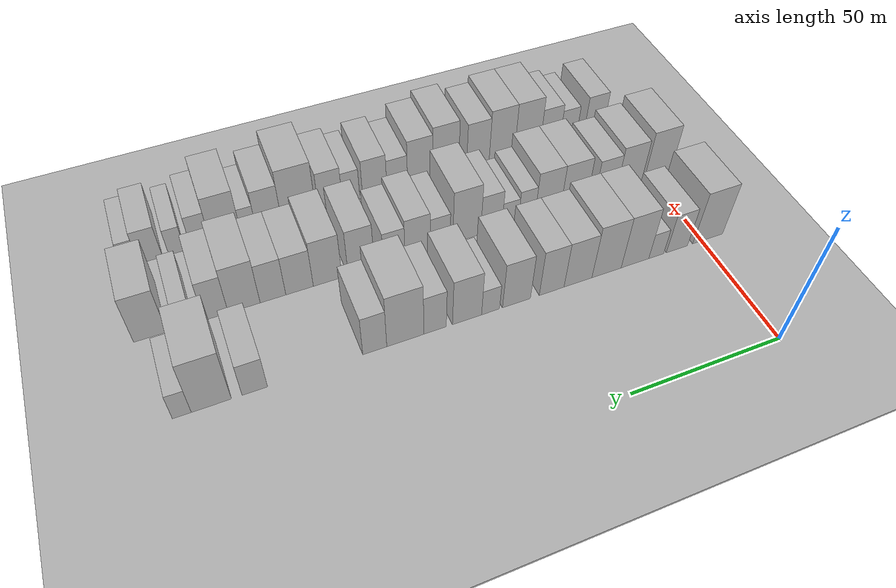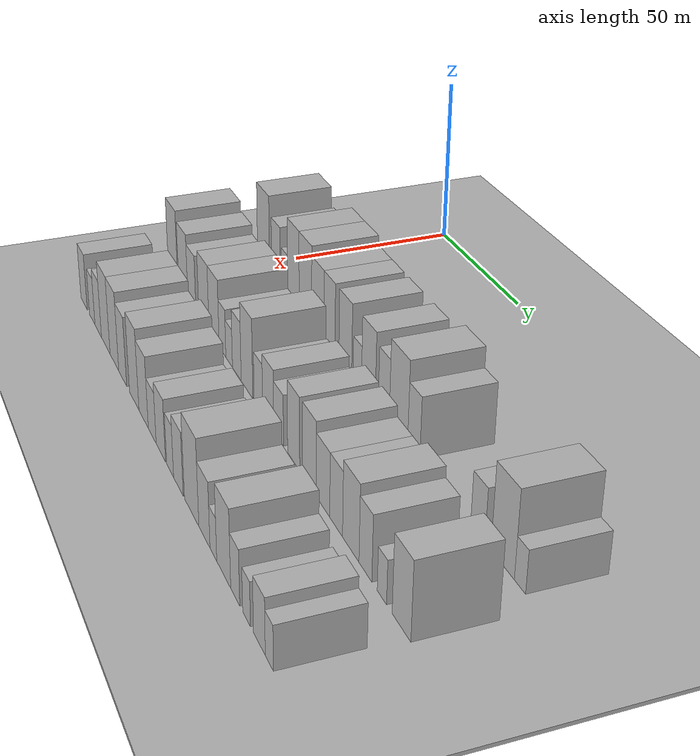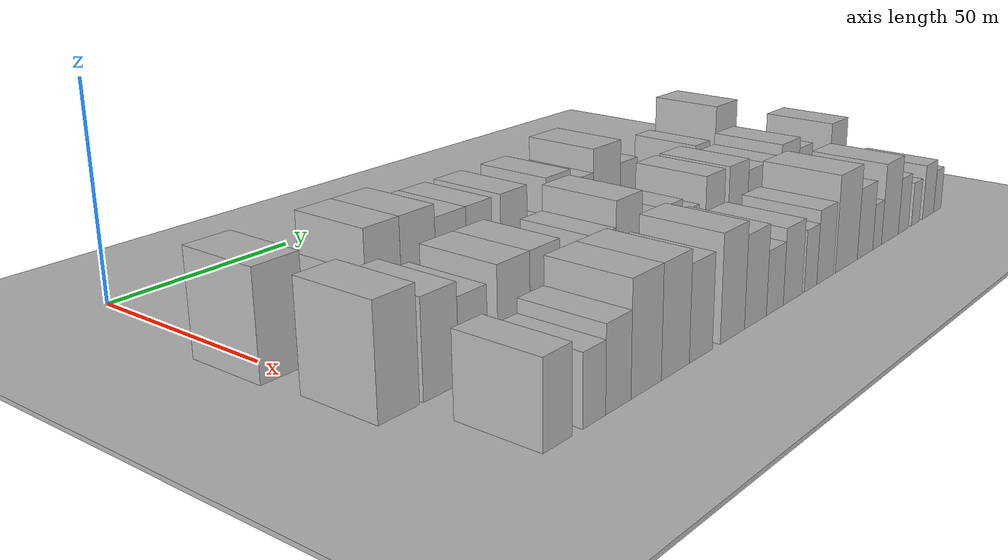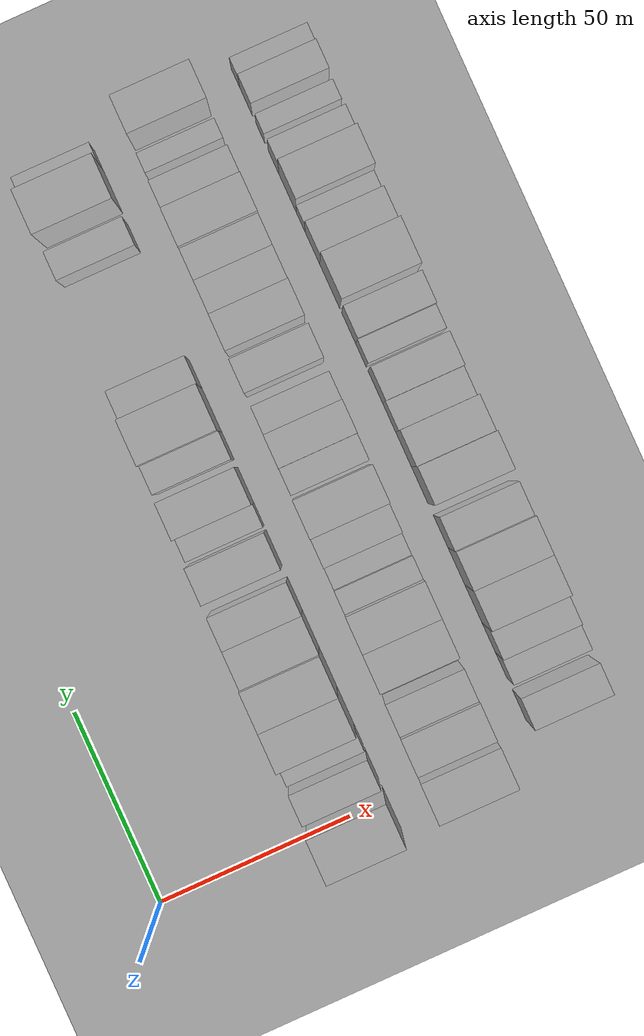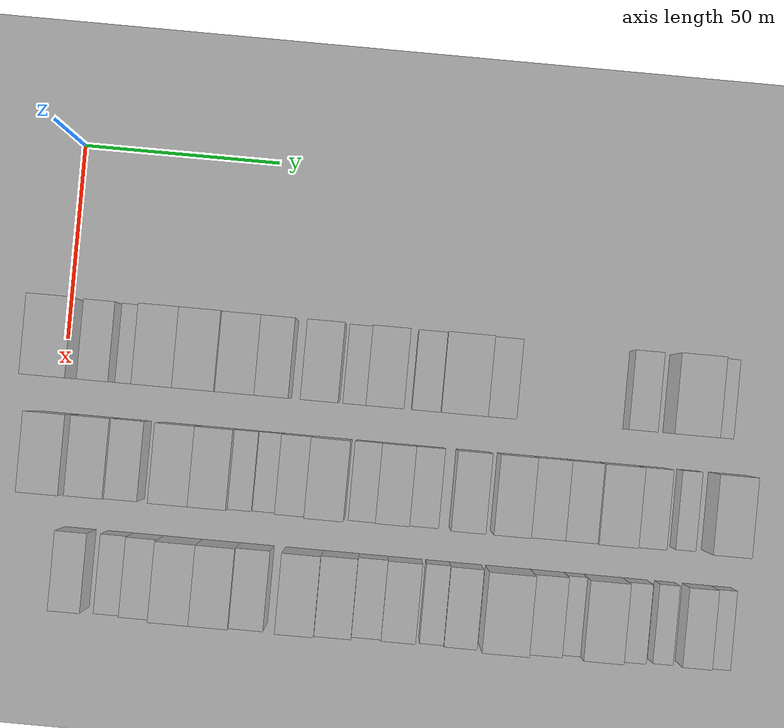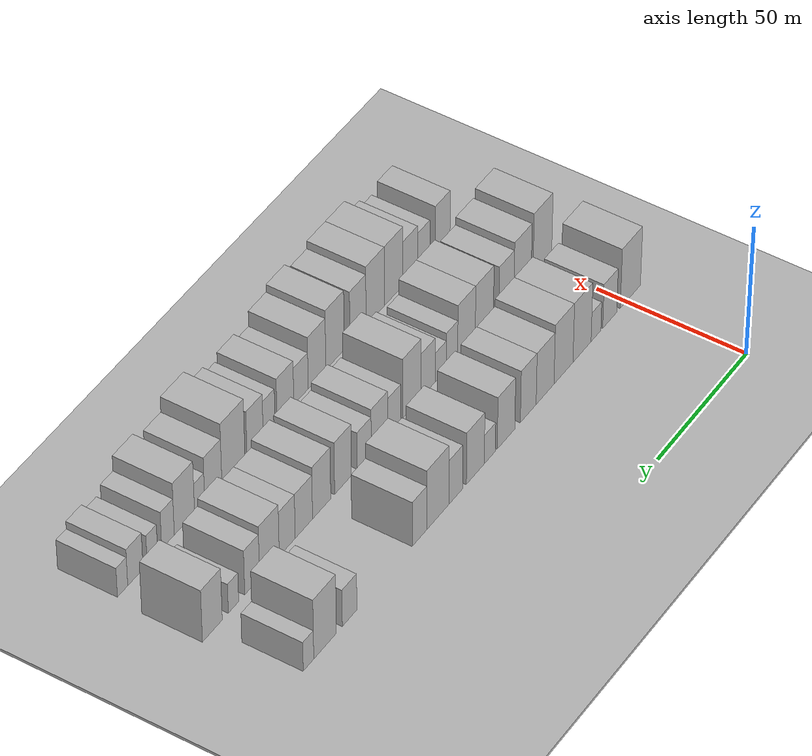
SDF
<sdf version="1.6">
 <world name="default">
  <include><name>ground_plane_1</name><uri>model://HANNAS_ground_plane</uri></include>
  <include>
   <name>ground_plane_2</name>
   <uri>model://HANNAS_ground_plane</uri>
   <pose>100 0 0  0 0 0</pose>
  </include>
  <model name="building_40">
   <static>1</static>
   <pose>50.0000 -1.9249 0 0.000000 0.000000 0.000000</pose>
   <link name="link">
    <pose>0 0 12.00 0 0 0</pose>
    <collision name="collision"><geometry><box><size>20.0000 11.3123 24.0000</size></box></geometry></collision>
    <visual name="visual">
     <cast_shadows>0</cast_shadows>
     <geometry><box><size>20.0000 11.3123 24.0000</size></box></geometry>
     <material>
      <script>
       <uri>model://HANNAS_wall/materials/scripts</uri>
       <uri>model://HANNAS_wall/materials/textures</uri>
       <name>vrc/HANNAS_wall</name>
      </script>
     </material>
    </visual>
   </link>
  </model>
  <model name="building_41">
   <static>1</static>
   <pose>50.0000 9.6621 0 0.000000 0.000000 0.000000</pose>
   <link name="link">
    <pose>0 0 9.00 0 0 0</pose>
    <collision name="collision"><geometry><box><size>20.0000 7.8618 18.0000</size></box></geometry></collision>
    <visual name="visual">
     <cast_shadows>0</cast_shadows>
     <geometry><box><size>20.0000 7.8618 18.0000</size></box></geometry>
     <material>
      <script>
       <uri>model://HANNAS_wall/materials/scripts</uri>
       <uri>model://HANNAS_wall/materials/textures</uri>
       <name>vrc/HANNAS_wall</name>
      </script>
     </material>
    </visual>
   </link>
  </model>
  <model name="building_42">
   <static>1</static>
   <pose>50.0000 17.3283 0 0.000000 0.000000 0.000000</pose>
   <link name="link">
    <pose>0 0 6.00 0 0 0</pose>
    <collision name="collision"><geometry><box><size>20.0000 5.4705 12.0000</size></box></geometry></collision>
    <visual name="visual">
     <cast_shadows>0</cast_shadows>
     <geometry><box><size>20.0000 5.4705 12.0000</size></box></geometry>
     <material>
      <script>
       <uri>model://HANNAS_wall/materials/scripts</uri>
       <uri>model://HANNAS_wall/materials/textures</uri>
       <name>vrc/HANNAS_wall</name>
      </script>
     </material>
    </visual>
   </link>
  </model>
  <model name="building_43">
   <static>1</static>
   <pose>50.0000 25.0624 0 0.000000 0.000000 0.000000</pose>
   <link name="link">
    <pose>0 0 12.00 0 0 0</pose>
    <collision name="collision"><geometry><box><size>20.0000 9.9977 24.0000</size></box></geometry></collision>
    <visual name="visual">
     <cast_shadows>0</cast_shadows>
     <geometry><box><size>20.0000 9.9977 24.0000</size></box></geometry>
     <material>
      <script>
       <uri>model://HANNAS_wall/materials/scripts</uri>
       <uri>model://HANNAS_wall/materials/textures</uri>
       <name>vrc/HANNAS_wall</name>
      </script>
     </material>
    </visual>
   </link>
  </model>
  <model name="building_44">
   <static>1</static>
   <pose>50.0000 35.2665 0 0.000000 0.000000 0.000000</pose>
   <link name="link">
    <pose>0 0 12.00 0 0 0</pose>
    <collision name="collision"><geometry><box><size>20.0000 10.4106 24.0000</size></box></geometry></collision>
    <visual name="visual">
     <cast_shadows>0</cast_shadows>
     <geometry><box><size>20.0000 10.4106 24.0000</size></box></geometry>
     <material>
      <script>
       <uri>model://HANNAS_wall/materials/scripts</uri>
       <uri>model://HANNAS_wall/materials/textures</uri>
       <name>vrc/HANNAS_wall</name>
      </script>
     </material>
    </visual>
   </link>
  </model>
  <model name="building_45">
   <static>1</static>
   <pose>50.0000 45.3380 0 0.000000 0.000000 0.000000</pose>
   <link name="link">
    <pose>0 0 10.50 0 0 0</pose>
    <collision name="collision"><geometry><box><size>20.0000 9.7325 21.0000</size></box></geometry></collision>
    <visual name="visual">
     <cast_shadows>0</cast_shadows>
     <geometry><box><size>20.0000 9.7325 21.0000</size></box></geometry>
     <material>
      <script>
       <uri>model://HANNAS_wall/materials/scripts</uri>
       <uri>model://HANNAS_wall/materials/textures</uri>
       <name>vrc/HANNAS_wall</name>
      </script>
     </material>
    </visual>
   </link>
  </model>
  <model name="building_46">
   <static>1</static>
   <pose>50.0000 54.4588 0 0.000000 0.000000 0.000000</pose>
   <link name="link">
    <pose>0 0 10.50 0 0 0</pose>
    <collision name="collision"><geometry><box><size>20.0000 8.5090 21.0000</size></box></geometry></collision>
    <visual name="visual">
     <cast_shadows>0</cast_shadows>
     <geometry><box><size>20.0000 8.5090 21.0000</size></box></geometry>
     <material>
      <script>
       <uri>model://HANNAS_wall/materials/scripts</uri>
       <uri>model://HANNAS_wall/materials/textures</uri>
       <name>vrc/HANNAS_wall</name>
      </script>
     </material>
    </visual>
   </link>
  </model>
  <model name="building_47">
   <static>1</static>
   <pose>50.0000 66.4038 0 0.000000 0.000000 0.000000</pose>
   <link name="link">
    <pose>0 0 10.50 0 0 0</pose>
    <collision name="collision"><geometry><box><size>20.0000 9.3811 21.0000</size></box></geometry></collision>
    <visual name="visual">
     <cast_shadows>0</cast_shadows>
     <geometry><box><size>20.0000 9.3811 21.0000</size></box></geometry>
     <material>
      <script>
       <uri>model://HANNAS_wall/materials/scripts</uri>
       <uri>model://HANNAS_wall/materials/textures</uri>
       <name>vrc/HANNAS_wall</name>
      </script>
     </material>
    </visual>
   </link>
  </model>
  <model name="building_48">
   <static>1</static>
   <pose>50.0000 75.0633 0 0.000000 0.000000 0.000000</pose>
   <link name="link">
    <pose>0 0 6.00 0 0 0</pose>
    <collision name="collision"><geometry><box><size>20.0000 5.9378 12.0000</size></box></geometry></collision>
    <visual name="visual">
     <cast_shadows>0</cast_shadows>
     <geometry><box><size>20.0000 5.9378 12.0000</size></box></geometry>
     <material>
      <script>
       <uri>model://HANNAS_wall/materials/scripts</uri>
       <uri>model://HANNAS_wall/materials/textures</uri>
       <name>vrc/HANNAS_wall</name>
      </script>
     </material>
    </visual>
   </link>
  </model>
  <model name="building_49">
   <static>1</static>
   <pose>50.0000 82.7642 0 0.000000 0.000000 0.000000</pose>
   <link name="link">
    <pose>0 0 10.50 0 0 0</pose>
    <collision name="collision"><geometry><box><size>20.0000 9.4639 21.0000</size></box></geometry></collision>
    <visual name="visual">
     <cast_shadows>0</cast_shadows>
     <geometry><box><size>20.0000 9.4639 21.0000</size></box></geometry>
     <material>
      <script>
       <uri>model://HANNAS_wall/materials/scripts</uri>
       <uri>model://HANNAS_wall/materials/textures</uri>
       <name>vrc/HANNAS_wall</name>
      </script>
     </material>
    </visual>
   </link>
  </model>
  <model name="building_50">
   <static>1</static>
   <pose>50.0000 93.1037 0 0.000000 0.000000 0.000000</pose>
   <link name="link">
    <pose>0 0 9.00 0 0 0</pose>
    <collision name="collision"><geometry><box><size>20.0000 7.2151 18.0000</size></box></geometry></collision>
    <visual name="visual">
     <cast_shadows>0</cast_shadows>
     <geometry><box><size>20.0000 7.2151 18.0000</size></box></geometry>
     <material>
      <script>
       <uri>model://HANNAS_wall/materials/scripts</uri>
       <uri>model://HANNAS_wall/materials/textures</uri>
       <name>vrc/HANNAS_wall</name>
      </script>
     </material>
    </visual>
   </link>
  </model>
  <model name="building_51">
   <static>1</static>
   <pose>50.0000 102.4961 0 0.000000 0.000000 0.000000</pose>
   <link name="link">
    <pose>0 0 12.00 0 0 0</pose>
    <collision name="collision"><geometry><box><size>20.0000 11.5699 24.0000</size></box></geometry></collision>
    <visual name="visual">
     <cast_shadows>0</cast_shadows>
     <geometry><box><size>20.0000 11.5699 24.0000</size></box></geometry>
     <material>
      <script>
       <uri>model://HANNAS_wall/materials/scripts</uri>
       <uri>model://HANNAS_wall/materials/textures</uri>
       <name>vrc/HANNAS_wall</name>
      </script>
     </material>
    </visual>
   </link>
  </model>
  <model name="building_52">
   <static>1</static>
   <pose>50.0000 111.9788 0 0.000000 0.000000 0.000000</pose>
   <link name="link">
    <pose>0 0 9.00 0 0 0</pose>
    <collision name="collision"><geometry><box><size>20.0000 7.3954 18.0000</size></box></geometry></collision>
    <visual name="visual">
     <cast_shadows>0</cast_shadows>
     <geometry><box><size>20.0000 7.3954 18.0000</size></box></geometry>
     <material>
      <script>
       <uri>model://HANNAS_wall/materials/scripts</uri>
       <uri>model://HANNAS_wall/materials/textures</uri>
       <name>vrc/HANNAS_wall</name>
      </script>
     </material>
    </visual>
   </link>
  </model>
  <model name="building_53">
   <static>1</static>
   <pose>50.0000 147.6479 0 0.000000 0.000000 0.000000</pose>
   <link name="link">
    <pose>0 0 7.50 0 0 0</pose>
    <collision name="collision"><geometry><box><size>20.0000 7.3143 15.0000</size></box></geometry></collision>
    <visual name="visual">
     <cast_shadows>0</cast_shadows>
     <geometry><box><size>20.0000 7.3143 15.0000</size></box></geometry>
     <material>
      <script>
       <uri>model://HANNAS_wall/materials/scripts</uri>
       <uri>model://HANNAS_wall/materials/textures</uri>
       <name>vrc/HANNAS_wall</name>
      </script>
     </material>
    </visual>
   </link>
  </model>
  <model name="building_54">
   <static>1</static>
   <pose>50.0000 159.9370 0 0.000000 0.000000 0.000000</pose>
   <link name="link">
    <pose>0 0 12.00 0 0 0</pose>
    <collision name="collision"><geometry><box><size>20.0000 11.2640 24.0000</size></box></geometry></collision>
    <visual name="visual">
     <cast_shadows>0</cast_shadows>
     <geometry><box><size>20.0000 11.2640 24.0000</size></box></geometry>
     <material>
      <script>
       <uri>model://HANNAS_wall/materials/scripts</uri>
       <uri>model://HANNAS_wall/materials/textures</uri>
       <name>vrc/HANNAS_wall</name>
      </script>
     </material>
    </visual>
   </link>
  </model>
  <model name="building_55">
   <static>1</static>
   <pose>50.0000 168.1762 0 0.000000 0.000000 0.000000</pose>
   <link name="link">
    <pose>0 0 6.00 0 0 0</pose>
    <collision name="collision"><geometry><box><size>20.0000 5.2142 12.0000</size></box></geometry></collision>
    <visual name="visual">
     <cast_shadows>0</cast_shadows>
     <geometry><box><size>20.0000 5.2142 12.0000</size></box></geometry>
     <material>
      <script>
       <uri>model://HANNAS_wall/materials/scripts</uri>
       <uri>model://HANNAS_wall/materials/textures</uri>
       <name>vrc/HANNAS_wall</name>
      </script>
     </material>
    </visual>
   </link>
  </model>
  <model name="building_111">
   <static>1</static>
   <pose>79.0000 -0.5664 0 0.000000 0.000000 0.000000</pose>
   <link name="link">
    <pose>0 0 12.00 0 0 0</pose>
    <collision name="collision"><geometry><box><size>20.0000 10.4074 24.0000</size></box></geometry></collision>
    <visual name="visual">
     <cast_shadows>0</cast_shadows>
     <geometry><box><size>20.0000 10.4074 24.0000</size></box></geometry>
     <material>
      <script>
       <uri>model://HANNAS_wall/materials/scripts</uri>
       <uri>model://HANNAS_wall/materials/textures</uri>
       <name>vrc/HANNAS_wall</name>
      </script>
     </material>
    </visual>
   </link>
  </model>
  <model name="building_112">
   <static>1</static>
   <pose>79.0000 10.4202 0 0.000000 0.000000 0.000000</pose>
   <link name="link">
    <pose>0 0 10.50 0 0 0</pose>
    <collision name="collision"><geometry><box><size>20.0000 9.5658 21.0000</size></box></geometry></collision>
    <visual name="visual">
     <cast_shadows>0</cast_shadows>
     <geometry><box><size>20.0000 9.5658 21.0000</size></box></geometry>
     <material>
      <script>
       <uri>model://HANNAS_wall/materials/scripts</uri>
       <uri>model://HANNAS_wall/materials/textures</uri>
       <name>vrc/HANNAS_wall</name>
      </script>
     </material>
    </visual>
   </link>
  </model>
  <model name="building_113">
   <static>1</static>
   <pose>79.0000 19.3299 0 0.000000 0.000000 0.000000</pose>
   <link name="link">
    <pose>0 0 9.00 0 0 0</pose>
    <collision name="collision"><geometry><box><size>20.0000 8.2535 18.0000</size></box></geometry></collision>
    <visual name="visual">
     <cast_shadows>0</cast_shadows>
     <geometry><box><size>20.0000 8.2535 18.0000</size></box></geometry>
     <material>
      <script>
       <uri>model://HANNAS_wall/materials/scripts</uri>
       <uri>model://HANNAS_wall/materials/textures</uri>
       <name>vrc/HANNAS_wall</name>
      </script>
     </material>
    </visual>
   </link>
  </model>
  <model name="building_114">
   <static>1</static>
   <pose>79.0000 31.3929 0 0.000000 0.000000 0.000000</pose>
   <link name="link">
    <pose>0 0 10.50 0 0 0</pose>
    <collision name="collision"><geometry><box><size>20.0000 9.8724 21.0000</size></box></geometry></collision>
    <visual name="visual">
     <cast_shadows>0</cast_shadows>
     <geometry><box><size>20.0000 9.8724 21.0000</size></box></geometry>
     <material>
      <script>
       <uri>model://HANNAS_wall/materials/scripts</uri>
       <uri>model://HANNAS_wall/materials/textures</uri>
       <name>vrc/HANNAS_wall</name>
      </script>
     </material>
    </visual>
   </link>
  </model>
  <model name="building_115">
   <static>1</static>
   <pose>79.0000 41.0868 0 0.000000 0.000000 0.000000</pose>
   <link name="link">
    <pose>0 0 10.50 0 0 0</pose>
    <collision name="collision"><geometry><box><size>20.0000 9.5153 21.0000</size></box></geometry></collision>
    <visual name="visual">
     <cast_shadows>0</cast_shadows>
     <geometry><box><size>20.0000 9.5153 21.0000</size></box></geometry>
     <material>
      <script>
       <uri>model://HANNAS_wall/materials/scripts</uri>
       <uri>model://HANNAS_wall/materials/textures</uri>
       <name>vrc/HANNAS_wall</name>
      </script>
     </material>
    </visual>
   </link>
  </model>
  <model name="building_116">
   <static>1</static>
   <pose>79.0000 48.8703 0 0.000000 0.000000 0.000000</pose>
   <link name="link">
    <pose>0 0 7.50 0 0 0</pose>
    <collision name="collision"><geometry><box><size>20.0000 6.0516 15.0000</size></box></geometry></collision>
    <visual name="visual">
     <cast_shadows>0</cast_shadows>
     <geometry><box><size>20.0000 6.0516 15.0000</size></box></geometry>
     <material>
      <script>
       <uri>model://HANNAS_wall/materials/scripts</uri>
       <uri>model://HANNAS_wall/materials/textures</uri>
       <name>vrc/HANNAS_wall</name>
      </script>
     </material>
    </visual>
   </link>
  </model>
  <model name="building_117">
   <static>1</static>
   <pose>79.0000 54.8504 0 0.000000 0.000000 0.000000</pose>
   <link name="link">
    <pose>0 0 6.00 0 0 0</pose>
    <collision name="collision"><geometry><box><size>20.0000 5.9087 12.0000</size></box></geometry></collision>
    <visual name="visual">
     <cast_shadows>0</cast_shadows>
     <geometry><box><size>20.0000 5.9087 12.0000</size></box></geometry>
     <material>
      <script>
       <uri>model://HANNAS_wall/materials/scripts</uri>
       <uri>model://HANNAS_wall/materials/textures</uri>
       <name>vrc/HANNAS_wall</name>
      </script>
     </material>
    </visual>
   </link>
  </model>
  <model name="building_118">
   <static>1</static>
   <pose>79.0000 61.5943 0 0.000000 0.000000 0.000000</pose>
   <link name="link">
    <pose>0 0 9.00 0 0 0</pose>
    <collision name="collision"><geometry><box><size>20.0000 7.5792 18.0000</size></box></geometry></collision>
    <visual name="visual">
     <cast_shadows>0</cast_shadows>
     <geometry><box><size>20.0000 7.5792 18.0000</size></box></geometry>
     <material>
      <script>
       <uri>model://HANNAS_wall/materials/scripts</uri>
       <uri>model://HANNAS_wall/materials/textures</uri>
       <name>vrc/HANNAS_wall</name>
      </script>
     </material>
    </visual>
   </link>
  </model>
  <model name="building_119">
   <static>1</static>
   <pose>79.0000 70.2655 0 0.000000 0.000000 0.000000</pose>
   <link name="link">
    <pose>0 0 12.00 0 0 0</pose>
    <collision name="collision"><geometry><box><size>20.0000 9.7632 24.0000</size></box></geometry></collision>
    <visual name="visual">
     <cast_shadows>0</cast_shadows>
     <geometry><box><size>20.0000 9.7632 24.0000</size></box></geometry>
     <material>
      <script>
       <uri>model://HANNAS_wall/materials/scripts</uri>
       <uri>model://HANNAS_wall/materials/textures</uri>
       <name>vrc/HANNAS_wall</name>
      </script>
     </material>
    </visual>
   </link>
  </model>
  <model name="building_120">
   <static>1</static>
   <pose>79.0000 79.5717 0 0.000000 0.000000 0.000000</pose>
   <link name="link">
    <pose>0 0 7.50 0 0 0</pose>
    <collision name="collision"><geometry><box><size>20.0000 6.8492 15.0000</size></box></geometry></collision>
    <visual name="visual">
     <cast_shadows>0</cast_shadows>
     <geometry><box><size>20.0000 6.8492 15.0000</size></box></geometry>
     <material>
      <script>
       <uri>model://HANNAS_wall/materials/scripts</uri>
       <uri>model://HANNAS_wall/materials/textures</uri>
       <name>vrc/HANNAS_wall</name>
      </script>
     </material>
    </visual>
   </link>
  </model>
  <model name="building_121">
   <static>1</static>
   <pose>79.0000 87.2828 0 0.000000 0.000000 0.000000</pose>
   <link name="link">
    <pose>0 0 9.00 0 0 0</pose>
    <collision name="collision"><geometry><box><size>20.0000 8.5730 18.0000</size></box></geometry></collision>
    <visual name="visual">
     <cast_shadows>0</cast_shadows>
     <geometry><box><size>20.0000 8.5730 18.0000</size></box></geometry>
     <material>
      <script>
       <uri>model://HANNAS_wall/materials/scripts</uri>
       <uri>model://HANNAS_wall/materials/textures</uri>
       <name>vrc/HANNAS_wall</name>
      </script>
     </material>
    </visual>
   </link>
  </model>
  <model name="building_122">
   <static>1</static>
   <pose>79.0000 95.2167 0 0.000000 0.000000 0.000000</pose>
   <link name="link">
    <pose>0 0 7.50 0 0 0</pose>
    <collision name="collision"><geometry><box><size>20.0000 7.2949 15.0000</size></box></geometry></collision>
    <visual name="visual">
     <cast_shadows>0</cast_shadows>
     <geometry><box><size>20.0000 7.2949 15.0000</size></box></geometry>
     <material>
      <script>
       <uri>model://HANNAS_wall/materials/scripts</uri>
       <uri>model://HANNAS_wall/materials/textures</uri>
       <name>vrc/HANNAS_wall</name>
      </script>
     </material>
    </visual>
   </link>
  </model>
  <model name="building_123">
   <static>1</static>
   <pose>79.0000 106.1734 0 0.000000 0.000000 0.000000</pose>
   <link name="link">
    <pose>0 0 10.50 0 0 0</pose>
    <collision name="collision"><geometry><box><size>20.0000 8.6186 21.0000</size></box></geometry></collision>
    <visual name="visual">
     <cast_shadows>0</cast_shadows>
     <geometry><box><size>20.0000 8.6186 21.0000</size></box></geometry>
     <material>
      <script>
       <uri>model://HANNAS_wall/materials/scripts</uri>
       <uri>model://HANNAS_wall/materials/textures</uri>
       <name>vrc/HANNAS_wall</name>
      </script>
     </material>
    </visual>
   </link>
  </model>
  <model name="building_124">
   <static>1</static>
   <pose>79.0000 117.1242 0 0.000000 0.000000 0.000000</pose>
   <link name="link">
    <pose>0 0 10.50 0 0 0</pose>
    <collision name="collision"><geometry><box><size>20.0000 9.2830 21.0000</size></box></geometry></collision>
    <visual name="visual">
     <cast_shadows>0</cast_shadows>
     <geometry><box><size>20.0000 9.2830 21.0000</size></box></geometry>
     <material>
      <script>
       <uri>model://HANNAS_wall/materials/scripts</uri>
       <uri>model://HANNAS_wall/materials/textures</uri>
       <name>vrc/HANNAS_wall</name>
      </script>
     </material>
    </visual>
   </link>
  </model>
  <model name="building_125">
   <static>1</static>
   <pose>79.0000 126.1529 0 0.000000 0.000000 0.000000</pose>
   <link name="link">
    <pose>0 0 9.00 0 0 0</pose>
    <collision name="collision"><geometry><box><size>20.0000 8.7744 18.0000</size></box></geometry></collision>
    <visual name="visual">
     <cast_shadows>0</cast_shadows>
     <geometry><box><size>20.0000 8.7744 18.0000</size></box></geometry>
     <material>
      <script>
       <uri>model://HANNAS_wall/materials/scripts</uri>
       <uri>model://HANNAS_wall/materials/textures</uri>
       <name>vrc/HANNAS_wall</name>
      </script>
     </material>
    </visual>
   </link>
  </model>
  <model name="building_126">
   <static>1</static>
   <pose>79.0000 134.5566 0 0.000000 0.000000 0.000000</pose>
   <link name="link">
    <pose>0 0 9.00 0 0 0</pose>
    <collision name="collision"><geometry><box><size>20.0000 8.0329 18.0000</size></box></geometry></collision>
    <visual name="visual">
     <cast_shadows>0</cast_shadows>
     <geometry><box><size>20.0000 8.0329 18.0000</size></box></geometry>
     <material>
      <script>
       <uri>model://HANNAS_wall/materials/scripts</uri>
       <uri>model://HANNAS_wall/materials/textures</uri>
       <name>vrc/HANNAS_wall</name>
      </script>
     </material>
    </visual>
   </link>
  </model>
  <model name="building_127">
   <static>1</static>
   <pose>79.0000 143.4894 0 0.000000 0.000000 0.000000</pose>
   <link name="link">
    <pose>0 0 10.50 0 0 0</pose>
    <collision name="collision"><geometry><box><size>20.0000 9.8327 21.0000</size></box></geometry></collision>
    <visual name="visual">
     <cast_shadows>0</cast_shadows>
     <geometry><box><size>20.0000 9.8327 21.0000</size></box></geometry>
     <material>
      <script>
       <uri>model://HANNAS_wall/materials/scripts</uri>
       <uri>model://HANNAS_wall/materials/textures</uri>
       <name>vrc/HANNAS_wall</name>
      </script>
     </material>
    </visual>
   </link>
  </model>
  <model name="building_128">
   <static>1</static>
   <pose>79.0000 152.0933 0 0.000000 0.000000 0.000000</pose>
   <link name="link">
    <pose>0 0 9.00 0 0 0</pose>
    <collision name="collision"><geometry><box><size>20.0000 7.3751 18.0000</size></box></geometry></collision>
    <visual name="visual">
     <cast_shadows>0</cast_shadows>
     <geometry><box><size>20.0000 7.3751 18.0000</size></box></geometry>
     <material>
      <script>
       <uri>model://HANNAS_wall/materials/scripts</uri>
       <uri>model://HANNAS_wall/materials/textures</uri>
       <name>vrc/HANNAS_wall</name>
      </script>
     </material>
    </visual>
   </link>
  </model>
  <model name="building_129">
   <static>1</static>
   <pose>79.0000 161.3317 0 0.000000 0.000000 0.000000</pose>
   <link name="link">
    <pose>0 0 6.00 0 0 0</pose>
    <collision name="collision"><geometry><box><size>20.0000 5.1016 12.0000</size></box></geometry></collision>
    <visual name="visual">
     <cast_shadows>0</cast_shadows>
     <geometry><box><size>20.0000 5.1016 12.0000</size></box></geometry>
     <material>
      <script>
       <uri>model://HANNAS_wall/materials/scripts</uri>
       <uri>model://HANNAS_wall/materials/textures</uri>
       <name>vrc/HANNAS_wall</name>
      </script>
     </material>
    </visual>
   </link>
  </model>
  <model name="building_130">
   <static>1</static>
   <pose>79.0000 171.7281 0 0.000000 0.000000 0.000000</pose>
   <link name="link">
    <pose>0 0 10.50 0 0 0</pose>
    <collision name="collision"><geometry><box><size>20.0000 9.6912 21.0000</size></box></geometry></collision>
    <visual name="visual">
     <cast_shadows>0</cast_shadows>
     <geometry><box><size>20.0000 9.6912 21.0000</size></box></geometry>
     <material>
      <script>
       <uri>model://HANNAS_wall/materials/scripts</uri>
       <uri>model://HANNAS_wall/materials/textures</uri>
       <name>vrc/HANNAS_wall</name>
      </script>
     </material>
    </visual>
   </link>
  </model>
  <model name="building_185">
   <static>1</static>
   <pose>108.0000 7.8148 0 0.000000 0.000000 0.000000</pose>
   <link name="link">
    <pose>0 0 9.00 0 0 0</pose>
    <collision name="collision"><geometry><box><size>20.0000 8.0488 18.0000</size></box></geometry></collision>
    <visual name="visual">
     <cast_shadows>0</cast_shadows>
     <geometry><box><size>20.0000 8.0488 18.0000</size></box></geometry>
     <material>
      <script>
       <uri>model://HANNAS_wall/materials/scripts</uri>
       <uri>model://HANNAS_wall/materials/textures</uri>
       <name>vrc/HANNAS_wall</name>
      </script>
     </material>
    </visual>
   </link>
  </model>
  <model name="building_186">
   <static>1</static>
   <pose>108.0000 18.1879 0 0.000000 0.000000 0.000000</pose>
   <link name="link">
    <pose>0 0 7.50 0 0 0</pose>
    <collision name="collision"><geometry><box><size>20.0000 6.6973 15.0000</size></box></geometry></collision>
    <visual name="visual">
     <cast_shadows>0</cast_shadows>
     <geometry><box><size>20.0000 6.6973 15.0000</size></box></geometry>
     <material>
      <script>
       <uri>model://HANNAS_wall/materials/scripts</uri>
       <uri>model://HANNAS_wall/materials/textures</uri>
       <name>vrc/HANNAS_wall</name>
      </script>
     </material>
    </visual>
   </link>
  </model>
  <model name="building_187">
   <static>1</static>
   <pose>108.0000 25.4696 0 0.000000 0.000000 0.000000</pose>
   <link name="link">
    <pose>0 0 9.00 0 0 0</pose>
    <collision name="collision"><geometry><box><size>20.0000 7.8661 18.0000</size></box></geometry></collision>
    <visual name="visual">
     <cast_shadows>0</cast_shadows>
     <geometry><box><size>20.0000 7.8661 18.0000</size></box></geometry>
     <material>
      <script>
       <uri>model://HANNAS_wall/materials/scripts</uri>
       <uri>model://HANNAS_wall/materials/textures</uri>
       <name>vrc/HANNAS_wall</name>
      </script>
     </material>
    </visual>
   </link>
  </model>
  <model name="building_188">
   <static>1</static>
   <pose>108.0000 34.4123 0 0.000000 0.000000 0.000000</pose>
   <link name="link">
    <pose>0 0 12.00 0 0 0</pose>
    <collision name="collision"><geometry><box><size>20.0000 10.0193 24.0000</size></box></geometry></collision>
    <visual name="visual">
     <cast_shadows>0</cast_shadows>
     <geometry><box><size>20.0000 10.0193 24.0000</size></box></geometry>
     <material>
      <script>
       <uri>model://HANNAS_wall/materials/scripts</uri>
       <uri>model://HANNAS_wall/materials/textures</uri>
       <name>vrc/HANNAS_wall</name>
      </script>
     </material>
    </visual>
   </link>
  </model>
  <model name="building_189">
   <static>1</static>
   <pose>108.0000 44.3031 0 0.000000 0.000000 0.000000</pose>
   <link name="link">
    <pose>0 0 12.00 0 0 0</pose>
    <collision name="collision"><geometry><box><size>20.0000 9.7623 24.0000</size></box></geometry></collision>
    <visual name="visual">
     <cast_shadows>0</cast_shadows>
     <geometry><box><size>20.0000 9.7623 24.0000</size></box></geometry>
     <material>
      <script>
       <uri>model://HANNAS_wall/materials/scripts</uri>
       <uri>model://HANNAS_wall/materials/textures</uri>
       <name>vrc/HANNAS_wall</name>
      </script>
     </material>
    </visual>
   </link>
  </model>
  <model name="building_190">
   <static>1</static>
   <pose>108.0000 53.4677 0 0.000000 0.000000 0.000000</pose>
   <link name="link">
    <pose>0 0 10.50 0 0 0</pose>
    <collision name="collision"><geometry><box><size>20.0000 8.5668 21.0000</size></box></geometry></collision>
    <visual name="visual">
     <cast_shadows>0</cast_shadows>
     <geometry><box><size>20.0000 8.5668 21.0000</size></box></geometry>
     <material>
      <script>
       <uri>model://HANNAS_wall/materials/scripts</uri>
       <uri>model://HANNAS_wall/materials/textures</uri>
       <name>vrc/HANNAS_wall</name>
      </script>
     </material>
    </visual>
   </link>
  </model>
  <model name="building_191">
   <static>1</static>
   <pose>108.0000 65.5833 0 0.000000 0.000000 0.000000</pose>
   <link name="link">
    <pose>0 0 12.00 0 0 0</pose>
    <collision name="collision"><geometry><box><size>20.0000 9.6643 24.0000</size></box></geometry></collision>
    <visual name="visual">
     <cast_shadows>0</cast_shadows>
     <geometry><box><size>20.0000 9.6643 24.0000</size></box></geometry>
     <material>
      <script>
       <uri>model://HANNAS_wall/materials/scripts</uri>
       <uri>model://HANNAS_wall/materials/textures</uri>
       <name>vrc/HANNAS_wall</name>
      </script>
     </material>
    </visual>
   </link>
  </model>
  <model name="building_192">
   <static>1</static>
   <pose>108.0000 75.0102 0 0.000000 0.000000 0.000000</pose>
   <link name="link">
    <pose>0 0 10.50 0 0 0</pose>
    <collision name="collision"><geometry><box><size>20.0000 9.1895 21.0000</size></box></geometry></collision>
    <visual name="visual">
     <cast_shadows>0</cast_shadows>
     <geometry><box><size>20.0000 9.1895 21.0000</size></box></geometry>
     <material>
      <script>
       <uri>model://HANNAS_wall/materials/scripts</uri>
       <uri>model://HANNAS_wall/materials/textures</uri>
       <name>vrc/HANNAS_wall</name>
      </script>
     </material>
    </visual>
   </link>
  </model>
  <model name="building_193">
   <static>1</static>
   <pose>108.0000 83.3357 0 0.000000 0.000000 0.000000</pose>
   <link name="link">
    <pose>0 0 7.50 0 0 0</pose>
    <collision name="collision"><geometry><box><size>20.0000 7.4614 15.0000</size></box></geometry></collision>
    <visual name="visual">
     <cast_shadows>0</cast_shadows>
     <geometry><box><size>20.0000 7.4614 15.0000</size></box></geometry>
     <material>
      <script>
       <uri>model://HANNAS_wall/materials/scripts</uri>
       <uri>model://HANNAS_wall/materials/textures</uri>
       <name>vrc/HANNAS_wall</name>
      </script>
     </material>
    </visual>
   </link>
  </model>
  <model name="building_194">
   <static>1</static>
   <pose>108.0000 91.3852 0 0.000000 0.000000 0.000000</pose>
   <link name="link">
    <pose>0 0 9.00 0 0 0</pose>
    <collision name="collision"><geometry><box><size>20.0000 8.6377 18.0000</size></box></geometry></collision>
    <visual name="visual">
     <cast_shadows>0</cast_shadows>
     <geometry><box><size>20.0000 8.6377 18.0000</size></box></geometry>
     <material>
      <script>
       <uri>model://HANNAS_wall/materials/scripts</uri>
       <uri>model://HANNAS_wall/materials/textures</uri>
       <name>vrc/HANNAS_wall</name>
      </script>
     </material>
    </visual>
   </link>
  </model>
  <model name="building_195">
   <static>1</static>
   <pose>108.0000 99.7517 0 0.000000 0.000000 0.000000</pose>
   <link name="link">
    <pose>0 0 7.50 0 0 0</pose>
    <collision name="collision"><geometry><box><size>20.0000 6.0953 15.0000</size></box></geometry></collision>
    <visual name="visual">
     <cast_shadows>0</cast_shadows>
     <geometry><box><size>20.0000 6.0953 15.0000</size></box></geometry>
     <material>
      <script>
       <uri>model://HANNAS_wall/materials/scripts</uri>
       <uri>model://HANNAS_wall/materials/textures</uri>
       <name>vrc/HANNAS_wall</name>
      </script>
     </material>
    </visual>
   </link>
  </model>
  <model name="building_196">
   <static>1</static>
   <pose>108.0000 106.9293 0 0.000000 0.000000 0.000000</pose>
   <link name="link">
    <pose>0 0 9.00 0 0 0</pose>
    <collision name="collision"><geometry><box><size>20.0000 8.2600 18.0000</size></box></geometry></collision>
    <visual name="visual">
     <cast_shadows>0</cast_shadows>
     <geometry><box><size>20.0000 8.2600 18.0000</size></box></geometry>
     <material>
      <script>
       <uri>model://HANNAS_wall/materials/scripts</uri>
       <uri>model://HANNAS_wall/materials/textures</uri>
       <name>vrc/HANNAS_wall</name>
      </script>
     </material>
    </visual>
   </link>
  </model>
  <model name="building_197">
   <static>1</static>
   <pose>108.0000 117.9031 0 0.000000 0.000000 0.000000</pose>
   <link name="link">
    <pose>0 0 12.00 0 0 0</pose>
    <collision name="collision"><geometry><box><size>20.0000 11.6876 24.0000</size></box></geometry></collision>
    <visual name="visual">
     <cast_shadows>0</cast_shadows>
     <geometry><box><size>20.0000 11.6876 24.0000</size></box></geometry>
     <material>
      <script>
       <uri>model://HANNAS_wall/materials/scripts</uri>
       <uri>model://HANNAS_wall/materials/textures</uri>
       <name>vrc/HANNAS_wall</name>
      </script>
     </material>
    </visual>
   </link>
  </model>
  <model name="building_198">
   <static>1</static>
   <pose>108.0000 128.0422 0 0.000000 0.000000 0.000000</pose>
   <link name="link">
    <pose>0 0 9.00 0 0 0</pose>
    <collision name="collision"><geometry><box><size>20.0000 8.5906 18.0000</size></box></geometry></collision>
    <visual name="visual">
     <cast_shadows>0</cast_shadows>
     <geometry><box><size>20.0000 8.5906 18.0000</size></box></geometry>
     <material>
      <script>
       <uri>model://HANNAS_wall/materials/scripts</uri>
       <uri>model://HANNAS_wall/materials/textures</uri>
       <name>vrc/HANNAS_wall</name>
      </script>
     </material>
    </visual>
   </link>
  </model>
  <model name="building_199">
   <static>1</static>
   <pose>108.0000 134.8621 0 0.000000 0.000000 0.000000</pose>
   <link name="link">
    <pose>0 0 6.00 0 0 0</pose>
    <collision name="collision"><geometry><box><size>20.0000 5.0491 12.0000</size></box></geometry></collision>
    <visual name="visual">
     <cast_shadows>0</cast_shadows>
     <geometry><box><size>20.0000 5.0491 12.0000</size></box></geometry>
     <material>
      <script>
       <uri>model://HANNAS_wall/materials/scripts</uri>
       <uri>model://HANNAS_wall/materials/textures</uri>
       <name>vrc/HANNAS_wall</name>
      </script>
     </material>
    </visual>
   </link>
  </model>
  <model name="building_200">
   <static>1</static>
   <pose>108.0000 142.4072 0 0.000000 0.000000 0.000000</pose>
   <link name="link">
    <pose>0 0 10.50 0 0 0</pose>
    <collision name="collision"><geometry><box><size>20.0000 10.0410 21.0000</size></box></geometry></collision>
    <visual name="visual">
     <cast_shadows>0</cast_shadows>
     <geometry><box><size>20.0000 10.0410 21.0000</size></box></geometry>
     <material>
      <script>
       <uri>model://HANNAS_wall/materials/scripts</uri>
       <uri>model://HANNAS_wall/materials/textures</uri>
       <name>vrc/HANNAS_wall</name>
      </script>
     </material>
    </visual>
   </link>
  </model>
  <model name="building_201">
   <static>1</static>
   <pose>108.0000 150.5391 0 0.000000 0.000000 0.000000</pose>
   <link name="link">
    <pose>0 0 7.50 0 0 0</pose>
    <collision name="collision"><geometry><box><size>20.0000 6.2229 15.0000</size></box></geometry></collision>
    <visual name="visual">
     <cast_shadows>0</cast_shadows>
     <geometry><box><size>20.0000 6.2229 15.0000</size></box></geometry>
     <material>
      <script>
       <uri>model://HANNAS_wall/materials/scripts</uri>
       <uri>model://HANNAS_wall/materials/textures</uri>
       <name>vrc/HANNAS_wall</name>
      </script>
     </material>
    </visual>
   </link>
  </model>
  <model name="building_202">
   <static>1</static>
   <pose>108.0000 158.2154 0 0.000000 0.000000 0.000000</pose>
   <link name="link">
    <pose>0 0 6.00 0 0 0</pose>
    <collision name="collision"><geometry><box><size>20.0000 5.1296 12.0000</size></box></geometry></collision>
    <visual name="visual">
     <cast_shadows>0</cast_shadows>
     <geometry><box><size>20.0000 5.1296 12.0000</size></box></geometry>
     <material>
      <script>
       <uri>model://HANNAS_wall/materials/scripts</uri>
       <uri>model://HANNAS_wall/materials/textures</uri>
       <name>vrc/HANNAS_wall</name>
      </script>
     </material>
    </visual>
   </link>
  </model>
  <model name="building_203">
   <static>1</static>
   <pose>108.0000 166.5105 0 0.000000 0.000000 0.000000</pose>
   <link name="link">
    <pose>0 0 7.50 0 0 0</pose>
    <collision name="collision"><geometry><box><size>20.0000 7.4605 15.0000</size></box></geometry></collision>
    <visual name="visual">
     <cast_shadows>0</cast_shadows>
     <geometry><box><size>20.0000 7.4605 15.0000</size></box></geometry>
     <material>
      <script>
       <uri>model://HANNAS_wall/materials/scripts</uri>
       <uri>model://HANNAS_wall/materials/textures</uri>
       <name>vrc/HANNAS_wall</name>
      </script>
     </material>
    </visual>
   </link>
  </model>
  <model name="building_204">
   <static>1</static>
   <pose>108.0000 172.7390 0 0.000000 0.000000 0.000000</pose>
   <link name="link">
    <pose>0 0 6.00 0 0 0</pose>
    <collision name="collision"><geometry><box><size>20.0000 4.9966 12.0000</size></box></geometry></collision>
    <visual name="visual">
     <cast_shadows>0</cast_shadows>
     <geometry><box><size>20.0000 4.9966 12.0000</size></box></geometry>
     <material>
      <script>
       <uri>model://HANNAS_wall/materials/scripts</uri>
       <uri>model://HANNAS_wall/materials/textures</uri>
       <name>vrc/HANNAS_wall</name>
      </script>
     </material>
    </visual>
   </link>
  </model>
 </world>
</sdf>
